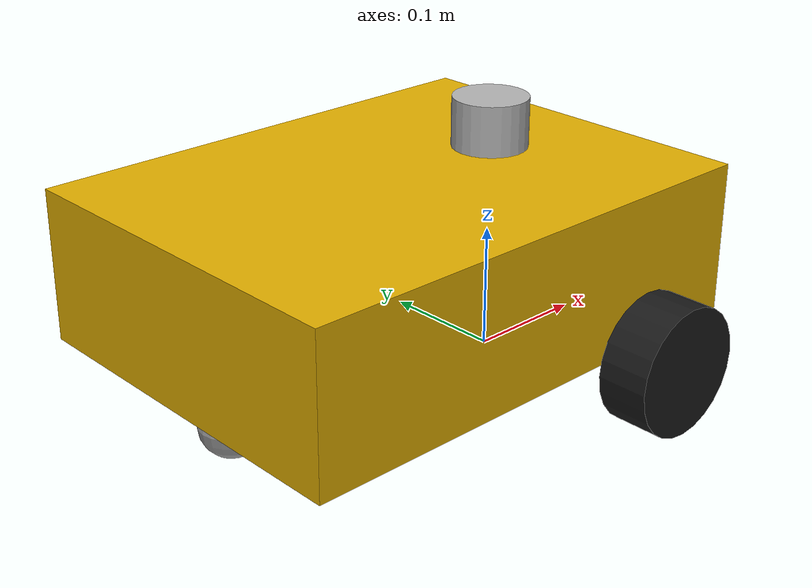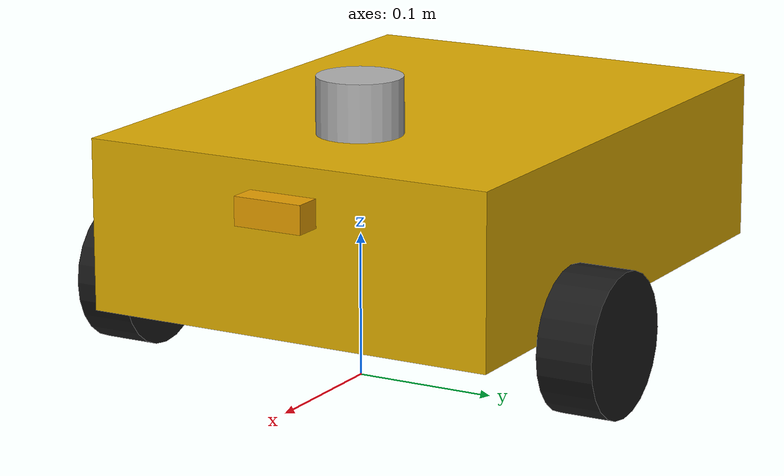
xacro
<?xml version="1.0"?>
<robot name="robot_diferencial" xmlns:xacro="http://www.ros.org/wiki/xacro">

  <!-- Medidas del robot -->
  <xacro:property name="base_length" value="0.4"/>
  <xacro:property name="base_width"  value="0.3"/>
  <xacro:property name="base_height" value="0.12"/>
  <xacro:property name="base_mass"   value="1.0"/>

  <xacro:property name="wheel_radius" value="0.05"/>
  <xacro:property name="wheel_width"  value="0.04"/>
  <xacro:property name="wheel_mass"   value="0.2"/>
  <xacro:property name="wheel_x"      value="0.10"/>
  <xacro:property name="wheel_separation" value="0.36"/>
  <xacro:property name="wheel_y"      value="${wheel_separation/2}"/>
  <xacro:property name="wheel_z"      value="${-base_height/2}"/>

  <xacro:property name="caster_radius" value="0.025"/>
  <xacro:property name="caster_mass"   value="0.05"/>
  <xacro:property name="caster_x"      value="${-base_length/2 + caster_radius + 0.02}"/>
  <xacro:property name="caster_z"      value="${wheel_z - wheel_radius + caster_radius}"/>

  <xacro:property name="base_z" value="${wheel_radius - wheel_z}"/>

  <!-- Parametros de los sensores -->
  <xacro:property name="lidar_samples"   value="360"/>
  <xacro:property name="lidar_min_angle" value="${-pi}"/>
  <xacro:property name="lidar_max_angle" value="${pi - 2*pi/lidar_samples}"/>
  <xacro:property name="lidar_range_min" value="0.15"/>
  <xacro:property name="lidar_range_max" value="12.0"/>
  <xacro:property name="lidar_rate"      value="10"/>
  <xacro:property name="lidar_noise"     value="0.01"/>

  <xacro:property name="camera_x"      value="${base_length/2 + 0.01}"/>
  <xacro:property name="camera_z"      value="0.03"/>
  <xacro:property name="camera_hfov"   value="1.047"/>
  <xacro:property name="camera_width"  value="640"/>
  <xacro:property name="camera_height" value="480"/>
  <xacro:property name="camera_rate"   value="30"/>
  <xacro:property name="camera_noise"  value="0.007"/>

  <material name="amarillo">
    <color rgba="0.88 0.68 0.00 1"/>
  </material>
  <material name="negro">
    <color rgba="0.1 0.1 0.1 1"/>
  </material>
  <material name="gris">
    <color rgba="0.6 0.6 0.6 1"/>
  </material>

  <!-- Macros para calcular las inercias -->
  <xacro:macro name="box_inertia" params="m x y z">
    <inertial>
      <mass value="${m}"/>
      <inertia ixx="${m/12.0*(y*y + z*z)}" ixy="0.0" ixz="0.0"
               iyy="${m/12.0*(x*x + z*z)}" iyz="0.0"
               izz="${m/12.0*(x*x + y*y)}"/>
    </inertial>
  </xacro:macro>

  <xacro:macro name="cylinder_inertia" params="m r h">
    <inertial>
      <origin xyz="0 0 0" rpy="${pi/2} 0 0"/>
      <mass value="${m}"/>
      <inertia ixx="${m/12.0*(3*r*r + h*h)}" ixy="0.0" ixz="0.0"
               iyy="${m/12.0*(3*r*r + h*h)}" iyz="0.0"
               izz="${m/2.0*r*r}"/>
    </inertial>
  </xacro:macro>

  <xacro:macro name="sphere_inertia" params="m r">
    <inertial>
      <mass value="${m}"/>
      <inertia ixx="${2.0/5.0*m*r*r}" ixy="0.0" ixz="0.0"
               iyy="${2.0/5.0*m*r*r}" iyz="0.0"
               izz="${2.0/5.0*m*r*r}"/>
    </inertial>
  </xacro:macro>

  <!-- Cuerpo del robot -->
  <link name="base_footprint"/>

  <link name="base_link">
    <visual>
      <geometry>
        <box size="${base_length} ${base_width} ${base_height}"/>
      </geometry>
      <material name="amarillo"/>
    </visual>
    <collision>
      <geometry>
        <box size="${base_length} ${base_width} ${base_height}"/>
      </geometry>
    </collision>
    <xacro:box_inertia m="${base_mass}" x="${base_length}" y="${base_width}" z="${base_height}"/>
  </link>

  <!-- Corremos el chasis para que el eje de las llantas quede en el origen -->
  <joint name="base_footprint_joint" type="fixed">
    <parent link="base_footprint"/>
    <child link="base_link"/>
    <origin xyz="${-wheel_x} 0 ${base_z}" rpy="0 0 0"/>
  </joint>

  <!-- Llantas de traccion -->
  <xacro:macro name="wheel" params="side reflect">
    <link name="${side}_wheel_link">
      <visual>
        <origin xyz="0 0 0" rpy="${pi/2} 0 0"/>
        <geometry>
          <cylinder radius="${wheel_radius}" length="${wheel_width}"/>
        </geometry>
        <material name="negro"/>
      </visual>
      <collision>
        <origin xyz="0 0 0" rpy="${pi/2} 0 0"/>
        <geometry>
          <cylinder radius="${wheel_radius}" length="${wheel_width}"/>
        </geometry>
      </collision>
      <xacro:cylinder_inertia m="${wheel_mass}" r="${wheel_radius}" h="${wheel_width}"/>
    </link>

    <joint name="${side}_wheel_joint" type="continuous">
      <parent link="base_link"/>
      <child link="${side}_wheel_link"/>
      <origin xyz="${wheel_x} ${reflect*wheel_y} ${wheel_z}" rpy="0 0 0"/>
      <axis xyz="0 1 0"/>
    </joint>

    <gazebo reference="${side}_wheel_link">
      <mu1>1.0</mu1>
      <mu2>1.0</mu2>
    </gazebo>
  </xacro:macro>

  <xacro:wheel side="left"  reflect="1"/>
  <xacro:wheel side="right" reflect="-1"/>

  <!-- Rueda loca -->
  <link name="caster_link">
    <visual>
      <geometry>
        <sphere radius="${caster_radius}"/>
      </geometry>
      <material name="gris"/>
    </visual>
    <collision>
      <geometry>
        <sphere radius="${caster_radius}"/>
      </geometry>
    </collision>
    <xacro:sphere_inertia m="${caster_mass}" r="${caster_radius}"/>
  </link>

  <!-- Como URDF no tiene junta esferica la armamos con tres juntas giratorias -->
  <xacro:macro name="dummy_inertia">
    <inertial>
      <mass value="0.001"/>
      <inertia ixx="1e-7" ixy="0.0" ixz="0.0" iyy="1e-7" iyz="0.0" izz="1e-7"/>
    </inertial>
  </xacro:macro>

  <link name="caster_x_link">
    <xacro:dummy_inertia/>
  </link>
  <link name="caster_y_link">
    <xacro:dummy_inertia/>
  </link>

  <joint name="caster_x_joint" type="continuous">
    <parent link="base_link"/>
    <child link="caster_x_link"/>
    <origin xyz="${caster_x} 0 ${caster_z}" rpy="0 0 0"/>
    <axis xyz="1 0 0"/>
  </joint>

  <joint name="caster_y_joint" type="continuous">
    <parent link="caster_x_link"/>
    <child link="caster_y_link"/>
    <origin xyz="0 0 0" rpy="0 0 0"/>
    <axis xyz="0 1 0"/>
  </joint>

  <joint name="caster_z_joint" type="continuous">
    <parent link="caster_y_link"/>
    <child link="caster_link"/>
    <origin xyz="0 0 0" rpy="0 0 0"/>
    <axis xyz="0 0 1"/>
  </joint>

  <gazebo reference="caster_link">
    <mu1>1.0</mu1>
    <mu2>1.0</mu2>
  </gazebo>

  <!-- Lidar -->
  <link name="lidar_link">
    <visual>
      <geometry>
        <cylinder radius="0.03" length="0.04"/>
      </geometry>
    </visual>
    <collision>
      <geometry>
        <cylinder radius="0.03" length="0.04"/>
      </geometry>
    </collision>
    <inertial>
      <mass value="0.05"/>
      <inertia ixx="0.0001" ixy="0" ixz="0" iyy="0.0001" iyz="0" izz="0.0001"/>
    </inertial>
  </link>

  <joint name="joint_lidar" type="fixed">
    <parent link="base_link"/>
    <child link="lidar_link"/>
    <origin xyz="0.1 0 0.08" rpy="0 0 0"/>
  </joint>

  <gazebo reference="lidar_link">
    <sensor name="lidar" type="gpu_lidar">
      <topic>scan</topic>
      <gz_frame_id>lidar_link</gz_frame_id>
      <always_on>true</always_on>
      <visualize>true</visualize>
      <update_rate>${lidar_rate}</update_rate>
      <lidar>
        <scan>
          <horizontal>
            <samples>${lidar_samples}</samples>
            <resolution>1</resolution>
            <min_angle>${lidar_min_angle}</min_angle>
            <max_angle>${lidar_max_angle}</max_angle>
          </horizontal>
        </scan>
        <range>
          <min>${lidar_range_min}</min>
          <max>${lidar_range_max}</max>
          <resolution>0.01</resolution>
        </range>
        <noise>
          <type>gaussian</type>
          <mean>0.0</mean>
          <stddev>${lidar_noise}</stddev>
        </noise>
      </lidar>
    </sensor>
  </gazebo>

  <!-- Camara -->
  <link name="camera_link">
    <visual>
      <geometry>
        <box size="0.02 0.05 0.02"/>
      </geometry>
    </visual>
    <collision>
      <geometry>
        <box size="0.02 0.05 0.02"/>
      </geometry>
    </collision>
    <inertial>
      <mass value="0.02"/>
      <inertia ixx="0.0001" ixy="0" ixz="0" iyy="0.0001" iyz="0" izz="0.0001"/>
    </inertial>
  </link>

  <joint name="joint_camera" type="fixed">
    <parent link="base_link"/>
    <child link="camera_link"/>
    <origin xyz="${camera_x} 0 ${camera_z}" rpy="0 0 0"/>
  </joint>

  <!-- Marco optico de la camara con z mirando hacia adelante -->
  <link name="camera_optical_frame"/>

  <joint name="joint_camera_optical" type="fixed">
    <parent link="camera_link"/>
    <child link="camera_optical_frame"/>
    <origin xyz="0 0 0" rpy="${-pi/2} 0 ${-pi/2}"/>
  </joint>

  <gazebo reference="camera_link">
    <sensor name="camara" type="camera">
      <topic>image_raw</topic>
      <gz_frame_id>camera_optical_frame</gz_frame_id>
      <always_on>true</always_on>
      <update_rate>${camera_rate}</update_rate>
      <camera>
        <camera_info_topic>camera_info</camera_info_topic>
        <horizontal_fov>${camera_hfov}</horizontal_fov>
        <image>
          <width>${camera_width}</width>
          <height>${camera_height}</height>
          <format>R8G8B8</format>
        </image>
        <clip>
          <near>0.05</near>
          <far>20</far>
        </clip>
        <noise>
          <type>gaussian</type>
          <mean>0.0</mean>
          <stddev>${camera_noise}</stddev>
        </noise>
      </camera>
    </sensor>
  </gazebo>

  <!-- Plugin de manejo diferencial -->
  <gazebo>
    <plugin filename="gz-sim-diff-drive-system" name="gz::sim::systems::DiffDrive">
      <left_joint>left_wheel_joint</left_joint>
      <right_joint>right_wheel_joint</right_joint>
      <wheel_separation>${wheel_separation}</wheel_separation>
      <wheel_radius>${wheel_radius}</wheel_radius>
      <odom_publish_frequency>30</odom_publish_frequency>
      <topic>cmd_vel</topic>
      <odom_topic>odom</odom_topic>
      <tf_topic>tf</tf_topic>
      <frame_id>odom</frame_id>
      <child_frame_id>base_footprint</child_frame_id>
    </plugin>
  </gazebo>

  <!-- Publica el estado de las juntas para armar los TF de las llantas -->
  <gazebo>
    <plugin filename="gz-sim-joint-state-publisher-system" name="gz::sim::systems::JointStatePublisher"/>
  </gazebo>

  <!-- Pose real sacada del simulador solo para comparar las odometrias -->
  <gazebo>
    <plugin filename="gz-sim-odometry-publisher-system" name="gz::sim::systems::OdometryPublisher">
      <odom_frame>world</odom_frame>
      <robot_base_frame>base_footprint</robot_base_frame>
      <odom_topic>ground_truth</odom_topic>
      <tf_topic>ground_truth/tf</tf_topic>
      <odom_publish_frequency>50</odom_publish_frequency>
      <dimensions>2</dimensions>
    </plugin>
  </gazebo>

</robot>
